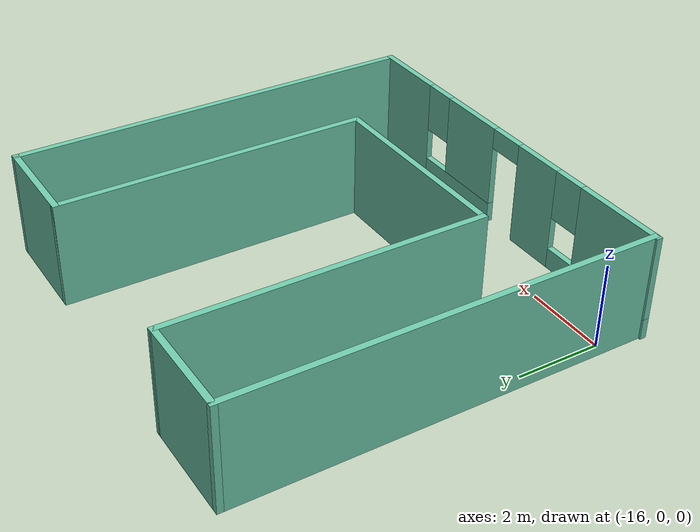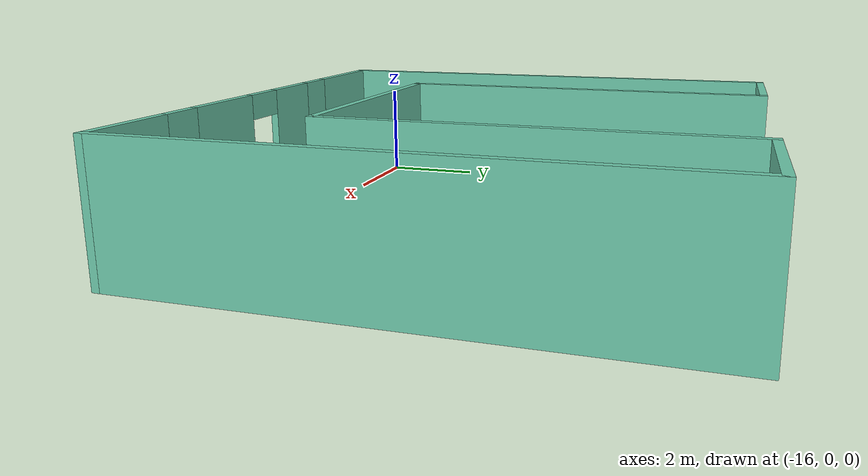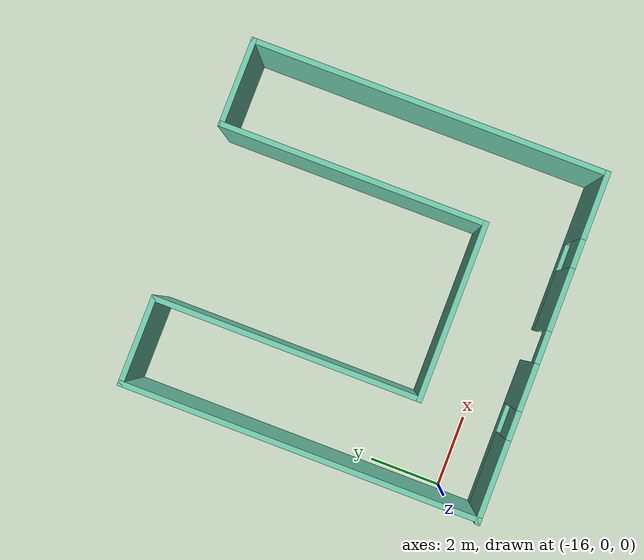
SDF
<?xml version='1.0'?>
<sdf version='1.6'>
  <model name='mybuilding'>
    <pose frame=''>-11.4442 3.92631 0 0 -0 0</pose>
    <link name='Wall_12'>
      <collision name='Wall_12_Collision'>
        <geometry>
          <box>
            <size>10 0.15 2.5</size>
          </box>
        </geometry>
        <pose frame=''>0 0 1.25 0 -0 0</pose>
      </collision>
      <visual name='Wall_12_Visual'>
        <pose frame=''>0 0 1.25 0 -0 0</pose>
        <geometry>
          <box>
            <size>10 0.15 2.5</size>
          </box>
        </geometry>
        <material>
          <script>
            <uri>file://media/materials/scripts/gazebo.material</uri>
            <name>Gazebo/Grey</name>
          </script>
          <ambient>0.435294 0.796078 0.67451 1</ambient>
        </material>
        <meta>
          <layer>0</layer>
        </meta>
      </visual>
      <pose frame=''>-4.75 0 0 0 0 -1.5708</pose>
    </link>
    <link name='Wall_3'>
      <collision name='Wall_3_Collision'>
        <geometry>
          <box>
            <size>2.5 0.15 2.5</size>
          </box>
        </geometry>
        <pose frame=''>0 0 1.25 0 -0 0</pose>
      </collision>
      <visual name='Wall_3_Visual'>
        <pose frame=''>0 0 1.25 0 -0 0</pose>
        <geometry>
          <box>
            <size>2.5 0.15 2.5</size>
          </box>
        </geometry>
        <material>
          <script>
            <uri>file://media/materials/scripts/gazebo.material</uri>
            <name>Gazebo/Grey</name>
          </script>
          <ambient>0.435294 0.796078 0.67451 1</ambient>
        </material>
        <meta>
          <layer>0</layer>
        </meta>
      </visual>
      <pose frame=''>-3.575 4.925 0 0 -0 0</pose>
    </link>
    <link name='Wall_4'>
      <collision name='Wall_4_Collision'>
        <geometry>
          <box>
            <size>7.5 0.15 2.5</size>
          </box>
        </geometry>
        <pose frame=''>0 0 1.25 0 -0 0</pose>
      </collision>
      <visual name='Wall_4_Visual'>
        <pose frame=''>0 0 1.25 0 -0 0</pose>
        <geometry>
          <box>
            <size>7.5 0.15 2.5</size>
          </box>
        </geometry>
        <material>
          <script>
            <uri>file://media/materials/scripts/gazebo.material</uri>
            <name>Gazebo/Grey</name>
          </script>
          <ambient>0.435294 0.796078 0.67451 1</ambient>
        </material>
        <meta>
          <layer>0</layer>
        </meta>
      </visual>
      <pose frame=''>-2.4 1.25 0 0 0 -1.5708</pose>
    </link>
    <link name='Wall_5'>
      <collision name='Wall_5_Collision'>
        <geometry>
          <box>
            <size>5 0.15 2.5</size>
          </box>
        </geometry>
        <pose frame=''>0 0 1.25 0 -0 0</pose>
      </collision>
      <visual name='Wall_5_Visual'>
        <pose frame=''>0 0 1.25 0 -0 0</pose>
        <geometry>
          <box>
            <size>5 0.15 2.5</size>
          </box>
        </geometry>
        <material>
          <script>
            <uri>file://media/materials/scripts/gazebo.material</uri>
            <name>Gazebo/Grey</name>
          </script>
          <ambient>0.435294 0.796078 0.67451 1</ambient>
        </material>
        <meta>
          <layer>0</layer>
        </meta>
      </visual>
      <pose frame=''>0.025 -2.425 0 0 -0 0</pose>
    </link>
    <link name='Wall_6'>
      <collision name='Wall_6_Collision'>
        <geometry>
          <box>
            <size>7.5 0.15 2.5</size>
          </box>
        </geometry>
        <pose frame=''>0 0 1.25 0 -0 0</pose>
      </collision>
      <visual name='Wall_6_Visual'>
        <pose frame=''>0 0 1.25 0 -0 0</pose>
        <geometry>
          <box>
            <size>7.5 0.15 2.5</size>
          </box>
        </geometry>
        <material>
          <script>
            <uri>file://media/materials/scripts/gazebo.material</uri>
            <name>Gazebo/Grey</name>
          </script>
          <ambient>0.435294 0.796078 0.67451 1</ambient>
        </material>
        <meta>
          <layer>0</layer>
        </meta>
      </visual>
      <pose frame=''>2.45 1.25 0 0 -0 1.5708</pose>
    </link>
    <link name='Wall_7'>
      <collision name='Wall_7_Collision'>
        <geometry>
          <box>
            <size>2.5 0.15 2.5</size>
          </box>
        </geometry>
        <pose frame=''>0 0 1.25 0 -0 0</pose>
      </collision>
      <visual name='Wall_7_Visual'>
        <pose frame=''>0 0 1.25 0 -0 0</pose>
        <geometry>
          <box>
            <size>2.5 0.15 2.5</size>
          </box>
        </geometry>
        <material>
          <script>
            <uri>file://media/materials/scripts/gazebo.material</uri>
            <name>Gazebo/Grey</name>
          </script>
          <ambient>0.435294 0.796078 0.67451 1</ambient>
        </material>
        <meta>
          <layer>0</layer>
        </meta>
      </visual>
      <pose frame=''>3.625 4.925 0 0 -0 0</pose>
    </link>
    <link name='Wall_8'>
      <collision name='Wall_8_Collision'>
        <geometry>
          <box>
            <size>10 0.15 2.5</size>
          </box>
        </geometry>
        <pose frame=''>0 0 1.25 0 -0 0</pose>
      </collision>
      <visual name='Wall_8_Visual'>
        <pose frame=''>0 0 1.25 0 -0 0</pose>
        <geometry>
          <box>
            <size>10 0.15 2.5</size>
          </box>
        </geometry>
        <material>
          <script>
            <uri>file://media/materials/scripts/gazebo.material</uri>
            <name>Gazebo/Grey</name>
          </script>
          <ambient>0.435294 0.796078 0.67451 1</ambient>
        </material>
        <meta>
          <layer>0</layer>
        </meta>
      </visual>
      <pose frame=''>4.8 0 0 0 0 -1.5708</pose>
    </link>
    <link name='Wall_9'>
      <pose frame=''>0 -4.925 0 0 -0 3.14159</pose>
      <visual name='Wall_9_Visual_0'>
        <pose frame=''>-3.92186 0 1.25 0 -0 0</pose>
        <geometry>
          <box>
            <size>1.90628 0.15 2.5</size>
          </box>
        </geometry>
        <material>
          <script>
            <uri>file://media/materials/scripts/gazebo.material</uri>
            <name>Gazebo/Grey</name>
          </script>
          <ambient>0.435294 0.796078 0.67451 1</ambient>
        </material>
        <meta>
          <layer>0</layer>
        </meta>
      </visual>
      <collision name='Wall_9_Collision_0'>
        <geometry>
          <box>
            <size>1.90628 0.15 2.5</size>
          </box>
        </geometry>
        <pose frame=''>-3.92186 0 1.25 0 -0 0</pose>
      </collision>
      <visual name='Wall_9_Visual_1'>
        <pose frame=''>1.1234 0 1.25 0 -0 0</pose>
        <geometry>
          <box>
            <size>1.30317 0.15 2.5</size>
          </box>
        </geometry>
        <material>
          <script>
            <uri>file://media/materials/scripts/gazebo.material</uri>
            <name>Gazebo/Grey</name>
          </script>
          <ambient>0.435294 0.796078 0.67451 1</ambient>
        </material>
        <meta>
          <layer>0</layer>
        </meta>
      </visual>
      <collision name='Wall_9_Collision_1'>
        <geometry>
          <box>
            <size>1.30317 0.15 2.5</size>
          </box>
        </geometry>
        <pose frame=''>1.1234 0 1.25 0 -0 0</pose>
      </collision>
      <visual name='Wall_9_Visual_2'>
        <pose frame=''>-1.69845 0 0.25 0 -0 0</pose>
        <geometry>
          <box>
            <size>2.54053 0.15 0.5</size>
          </box>
        </geometry>
        <material>
          <script>
            <uri>file://media/materials/scripts/gazebo.material</uri>
            <name>Gazebo/Grey</name>
          </script>
          <ambient>0.435294 0.796078 0.67451 1</ambient>
        </material>
        <meta>
          <layer>0</layer>
        </meta>
      </visual>
      <collision name='Wall_9_Collision_2'>
        <geometry>
          <box>
            <size>2.54053 0.15 0.5</size>
          </box>
        </geometry>
        <pose frame=''>-1.69845 0 0.25 0 -0 0</pose>
      </collision>
      <visual name='Wall_9_Visual_3'>
        <pose frame=''>3.32499 0 0.25 0 -0 0</pose>
        <geometry>
          <box>
            <size>3.10001 0.15 0.5</size>
          </box>
        </geometry>
        <material>
          <script>
            <uri>file://media/materials/scripts/gazebo.material</uri>
            <name>Gazebo/Grey</name>
          </script>
          <ambient>0.435294 0.796078 0.67451 1</ambient>
        </material>
        <meta>
          <layer>0</layer>
        </meta>
      </visual>
      <collision name='Wall_9_Collision_3'>
        <geometry>
          <box>
            <size>3.10001 0.15 0.5</size>
          </box>
        </geometry>
        <pose frame=''>3.32499 0 0.25 0 -0 0</pose>
      </collision>
      <visual name='Wall_9_Visual_4'>
        <pose frame=''>-1.29845 0 1.5 0 -0 0</pose>
        <geometry>
          <box>
            <size>1.74053 0.15 2</size>
          </box>
        </geometry>
        <material>
          <script>
            <uri>file://media/materials/scripts/gazebo.material</uri>
            <name>Gazebo/Grey</name>
          </script>
          <ambient>0.435294 0.796078 0.67451 1</ambient>
        </material>
        <meta>
          <layer>0</layer>
        </meta>
      </visual>
      <collision name='Wall_9_Collision_4'>
        <geometry>
          <box>
            <size>1.74053 0.15 2</size>
          </box>
        </geometry>
        <pose frame=''>-1.29845 0 1.5 0 -0 0</pose>
      </collision>
      <visual name='Wall_9_Visual_5'>
        <pose frame=''>-1.29845 0 1.5 0 -0 0</pose>
        <geometry>
          <box>
            <size>1.74053 0.15 2</size>
          </box>
        </geometry>
        <material>
          <script>
            <uri>file://media/materials/scripts/gazebo.material</uri>
            <name>Gazebo/Grey</name>
          </script>
          <ambient>0.435294 0.796078 0.67451 1</ambient>
        </material>
        <meta>
          <layer>0</layer>
        </meta>
      </visual>
      <collision name='Wall_9_Collision_5'>
        <geometry>
          <box>
            <size>1.74053 0.15 2</size>
          </box>
        </geometry>
        <pose frame=''>-1.29845 0 1.5 0 -0 0</pose>
      </collision>
      <visual name='Wall_9_Visual_6'>
        <pose frame=''>3.72499 0 1.5 0 -0 0</pose>
        <geometry>
          <box>
            <size>2.30001 0.15 2</size>
          </box>
        </geometry>
        <material>
          <script>
            <uri>file://media/materials/scripts/gazebo.material</uri>
            <name>Gazebo/Grey</name>
          </script>
          <ambient>0.435294 0.796078 0.67451 1</ambient>
        </material>
        <meta>
          <layer>0</layer>
        </meta>
      </visual>
      <collision name='Wall_9_Collision_6'>
        <geometry>
          <box>
            <size>2.30001 0.15 2</size>
          </box>
        </geometry>
        <pose frame=''>3.72499 0 1.5 0 -0 0</pose>
      </collision>
      <visual name='Wall_9_Visual_7'>
        <pose frame=''>-2.56872 0 1.9 0 -0 0</pose>
        <geometry>
          <box>
            <size>0.8 0.15 1.2</size>
          </box>
        </geometry>
        <material>
          <script>
            <uri>file://media/materials/scripts/gazebo.material</uri>
            <name>Gazebo/Grey</name>
          </script>
          <ambient>0.435294 0.796078 0.67451 1</ambient>
        </material>
        <meta>
          <layer>0</layer>
        </meta>
      </visual>
      <collision name='Wall_9_Collision_7'>
        <geometry>
          <box>
            <size>0.8 0.15 1.2</size>
          </box>
        </geometry>
        <pose frame=''>-2.56872 0 1.9 0 -0 0</pose>
      </collision>
      <visual name='Wall_9_Visual_8'>
        <pose frame=''>2.17499 0 1.9 0 -0 0</pose>
        <geometry>
          <box>
            <size>0.8 0.15 1.2</size>
          </box>
        </geometry>
        <material>
          <script>
            <uri>file://media/materials/scripts/gazebo.material</uri>
            <name>Gazebo/Grey</name>
          </script>
          <ambient>0.435294 0.796078 0.67451 1</ambient>
        </material>
        <meta>
          <layer>0</layer>
        </meta>
      </visual>
      <collision name='Wall_9_Collision_8'>
        <geometry>
          <box>
            <size>0.8 0.15 1.2</size>
          </box>
        </geometry>
        <pose frame=''>2.17499 0 1.9 0 -0 0</pose>
      </collision>
      <visual name='Wall_9_Visual_9'>
        <pose frame=''>0.021816 0 2.25 0 -0 0</pose>
        <geometry>
          <box>
            <size>0.9 0.15 0.5</size>
          </box>
        </geometry>
        <material>
          <script>
            <uri>file://media/materials/scripts/gazebo.material</uri>
            <name>Gazebo/Grey</name>
          </script>
          <ambient>0.435294 0.796078 0.67451 1</ambient>
        </material>
        <meta>
          <layer>0</layer>
        </meta>
      </visual>
      <collision name='Wall_9_Collision_9'>
        <geometry>
          <box>
            <size>0.9 0.15 0.5</size>
          </box>
        </geometry>
        <pose frame=''>0.021816 0 2.25 0 -0 0</pose>
      </collision>
      <visual name='Wall_9_Visual_10'>
        <pose frame=''>0.021816 0 2.25 0 -0 0</pose>
        <geometry>
          <box>
            <size>0.9 0.15 0.5</size>
          </box>
        </geometry>
        <material>
          <script>
            <uri>file://media/materials/scripts/gazebo.material</uri>
            <name>Gazebo/Grey</name>
          </script>
          <ambient>0.435294 0.796078 0.67451 1</ambient>
        </material>
        <meta>
          <layer>0</layer>
        </meta>
      </visual>
      <collision name='Wall_9_Collision_10'>
        <geometry>
          <box>
            <size>0.9 0.15 0.5</size>
          </box>
        </geometry>
        <pose frame=''>0.021816 0 2.25 0 -0 0</pose>
      </collision>
    </link>
    <static>1</static>
  </model>
</sdf>
